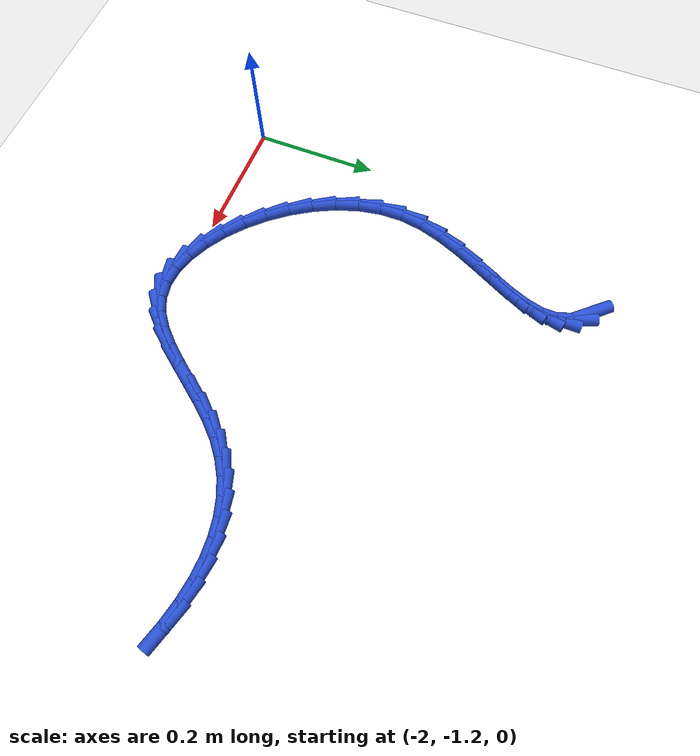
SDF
<sdf version="1.6">
 <world name="default">
  <model name="ground_plane">
   <static>1</static>
   <link name="link">
    <collision name="collision">
     <geometry><plane><normal>0 0 1</normal><size>100 100</size></plane></geometry>
     <surface><friction><ode><mu>100</mu><mu2>50</mu2></ode></friction></surface>
    </collision>
    <visual name="visual">
     <cast_shadows>0</cast_shadows>
     <geometry><plane><normal>0 0 1</normal><size>100 100</size></plane></geometry>
     <material>
      <script><uri>file://media/materials/scripts/gazebo.material</uri><name>Gazebo/WhiteGlow</name></script>
     </material>
    </visual>
   </link>
  </model>
  <model name="line">
   <link name="link_147">
    <pose>-1.8571635827525932 -0.5869967777899616 0.01 0 1.57 -0.8483136154068502</pose>
    <collision name="collision">
     <geometry><cylinder><radius>0.01</radius><length>0.08</length></cylinder></geometry>
    </collision>
    <visual name="visual">
     <material>
      <script><name>Gazebo/Blue</name><uri>file://media/materials/scripts/gazebo.material</uri></script>
     </material>
     <geometry><cylinder><radius>0.01</radius><length>0.08</length></cylinder></geometry>
    </visual>
   </link>
   <link name="link_148">
    <pose>-1.8396048983561772 -0.606916552551228 0.01 0 1.57 -1.229301847339331</pose>
    <collision name="collision">
     <geometry><cylinder><radius>0.01</radius><length>0.08</length></cylinder></geometry>
    </collision>
    <visual name="visual">
     <material>
      <script><name>Gazebo/Blue</name><uri>file://media/materials/scripts/gazebo.material</uri></script>
     </material>
     <geometry><cylinder><radius>0.01</radius><length>0.08</length></cylinder></geometry>
    </visual>
   </link>
   <link name="link_149">
    <pose>-1.8316050894118576 -0.6294246437668927 0.01 0 1.57 1.564953882779649</pose>
    <collision name="collision">
     <geometry><cylinder><radius>0.01</radius><length>0.08</length></cylinder></geometry>
    </collision>
    <visual name="visual">
     <material>
      <script><name>Gazebo/Blue</name><uri>file://media/materials/scripts/gazebo.material</uri></script>
     </material>
     <geometry><cylinder><radius>0.01</radius><length>0.08</length></cylinder></geometry>
    </visual>
   </link>
   <link name="link_150">
    <pose>-1.8317507326457945 -0.6543528375873002 0.01 0 1.57 1.3309283282918298</pose>
    <collision name="collision">
     <geometry><cylinder><radius>0.01</radius><length>0.08</length></cylinder></geometry>
    </collision>
    <visual name="visual">
     <material>
      <script><name>Gazebo/Blue</name><uri>file://media/materials/scripts/gazebo.material</uri></script>
     </material>
     <geometry><cylinder><radius>0.01</radius><length>0.08</length></cylinder></geometry>
    </visual>
   </link>
   <link name="link_151">
    <pose>-1.8383879100776281 -0.6814902333416779 0.01 0 1.57 1.1956118234558837</pose>
    <collision name="collision">
     <geometry><cylinder><radius>0.01</radius><length>0.08</length></cylinder></geometry>
    </collision>
    <visual name="visual">
     <material>
      <script><name>Gazebo/Blue</name><uri>file://media/materials/scripts/gazebo.material</uri></script>
     </material>
     <geometry><cylinder><radius>0.01</radius><length>0.08</length></cylinder></geometry>
    </visual>
   </link>
   <link name="link_152">
    <pose>-1.849862703726998 -0.7106259303592527 0.01 0 1.57 1.1281393002497861</pose>
    <collision name="collision">
     <geometry><cylinder><radius>0.01</radius><length>0.08</length></cylinder></geometry>
    </collision>
    <visual name="visual">
     <material>
      <script><name>Gazebo/Blue</name><uri>file://media/materials/scripts/gazebo.material</uri></script>
     </material>
     <geometry><cylinder><radius>0.01</radius><length>0.08</length></cylinder></geometry>
    </visual>
   </link>
   <link name="link_153">
    <pose>-1.864521195613543 -0.7415490279692516 0.01 0 1.57 1.1086643846197186</pose>
    <collision name="collision">
     <geometry><cylinder><radius>0.01</radius><length>0.08</length></cylinder></geometry>
    </collision>
    <visual name="visual">
     <material>
      <script><name>Gazebo/Blue</name><uri>file://media/materials/scripts/gazebo.material</uri></script>
     </material>
     <geometry><cylinder><radius>0.01</radius><length>0.08</length></cylinder></geometry>
    </visual>
   </link>
   <link name="link_154">
    <pose>-1.8807094677569032 -0.7740486255009017 0.01 0 1.57 1.1278741670774544</pose>
    <collision name="collision">
     <geometry><cylinder><radius>0.01</radius><length>0.08</length></cylinder></geometry>
    </collision>
    <visual name="visual">
     <material>
      <script><name>Gazebo/Blue</name><uri>file://media/materials/scripts/gazebo.material</uri></script>
     </material>
     <geometry><cylinder><radius>0.01</radius><length>0.08</length></cylinder></geometry>
    </visual>
   </link>
   <link name="link_155">
    <pose>-1.8967736021767183 -0.8079138222834302 0.01 0 1.57 1.1834623850517578</pose>
    <collision name="collision">
     <geometry><cylinder><radius>0.01</radius><length>0.08</length></cylinder></geometry>
    </collision>
    <visual name="visual">
     <material>
      <script><name>Gazebo/Blue</name><uri>file://media/materials/scripts/gazebo.material</uri></script>
     </material>
     <geometry><cylinder><radius>0.01</radius><length>0.08</length></cylinder></geometry>
    </visual>
   </link>
   <link name="link_156">
    <pose>-1.9110596808926272 -0.8429337176460641 0.01 0 1.57 1.2776822881761742</pose>
    <collision name="collision">
     <geometry><cylinder><radius>0.01</radius><length>0.08</length></cylinder></geometry>
    </collision>
    <visual name="visual">
     <material>
      <script><name>Gazebo/Blue</name><uri>file://media/materials/scripts/gazebo.material</uri></script>
     </material>
     <geometry><cylinder><radius>0.01</radius><length>0.08</length></cylinder></geometry>
    </visual>
   </link>
   <link name="link_157">
    <pose>-1.9219137859242699 -0.8788974109180303 0.01 0 1.57 1.414885408438813</pose>
    <collision name="collision">
     <geometry><cylinder><radius>0.01</radius><length>0.08</length></cylinder></geometry>
    </collision>
    <visual name="visual">
     <material>
      <script><name>Gazebo/Blue</name><uri>file://media/materials/scripts/gazebo.material</uri></script>
     </material>
     <geometry><cylinder><radius>0.01</radius><length>0.08</length></cylinder></geometry>
    </visual>
   </link>
   <link name="link_158">
    <pose>-1.927681999291286 -0.9155940014285561 0.01 0 1.57 -1.5542924822584658</pose>
    <collision name="collision">
     <geometry><cylinder><radius>0.01</radius><length>0.08</length></cylinder></geometry>
    </collision>
    <visual name="visual">
     <material>
      <script><name>Gazebo/Blue</name><uri>file://media/materials/scripts/gazebo.material</uri></script>
     </material>
     <geometry><cylinder><radius>0.01</radius><length>0.08</length></cylinder></geometry>
    </visual>
   </link>
   <link name="link_159">
    <pose>-1.92706872552102 -0.9527500766308098 0.01 0 1.57 -1.3914892937701793</pose>
    <collision name="collision">
     <geometry><cylinder><radius>0.01</radius><length>0.08</length></cylinder></geometry>
    </collision>
    <visual name="visual">
     <material>
      <script><name>Gazebo/Blue</name><uri>file://media/materials/scripts/gazebo.material</uri></script>
     </material>
     <geometry><cylinder><radius>0.01</radius><length>0.08</length></cylinder></geometry>
    </visual>
   </link>
   <link name="link_160">
    <pose>-1.9203500200660817 -0.9898180384447187 0.01 0 1.57 -1.24908857601859</pose>
    <collision name="collision">
     <geometry><cylinder><radius>0.01</radius><length>0.08</length></cylinder></geometry>
    </collision>
    <visual name="visual">
     <material>
      <script><name>Gazebo/Blue</name><uri>file://media/materials/scripts/gazebo.material</uri></script>
     </material>
     <geometry><cylinder><radius>0.01</radius><length>0.08</length></cylinder></geometry>
    </visual>
   </link>
   <link name="link_161">
    <pose>-1.9082327164751347 -1.0261751365282938 0.01 0 1.57 -1.1233277437378097</pose>
    <collision name="collision">
     <geometry><cylinder><radius>0.01</radius><length>0.08</length></cylinder></geometry>
    </collision>
    <visual name="visual">
     <material>
      <script><name>Gazebo/Blue</name><uri>file://media/materials/scripts/gazebo.material</uri></script>
     </material>
     <geometry><cylinder><radius>0.01</radius><length>0.08</length></cylinder></geometry>
    </visual>
   </link>
   <link name="link_162">
    <pose>-1.8914236596827907 -1.0611986185531883 0.01 0 1.57 -1.0094395321073677</pose>
    <collision name="collision">
     <geometry><cylinder><radius>0.01</radius><length>0.08</length></cylinder></geometry>
    </collision>
    <visual name="visual">
     <material>
      <script><name>Gazebo/Blue</name><uri>file://media/materials/scripts/gazebo.material</uri></script>
     </material>
     <geometry><cylinder><radius>0.01</radius><length>0.08</length></cylinder></geometry>
    </visual>
   </link>
   <link name="link_163">
    <pose>-1.8706296946236578 -1.0942657321910567 0.01 0 1.57 -0.9024551767164225</pose>
    <collision name="collision">
     <geometry><cylinder><radius>0.01</radius><length>0.08</length></cylinder></geometry>
    </collision>
    <visual name="visual">
     <material>
      <script><name>Gazebo/Blue</name><uri>file://media/materials/scripts/gazebo.material</uri></script>
     </material>
     <geometry><cylinder><radius>0.01</radius><length>0.08</length></cylinder></geometry>
    </visual>
   </link>
   <link name="link_164">
    <pose>-1.8465576662323449 -1.1247537251135509 0.01 0 1.57 -0.797318248520814</pose>
    <collision name="collision">
     <geometry><cylinder><radius>0.01</radius><length>0.08</length></cylinder></geometry>
    </collision>
    <visual name="visual">
     <material>
      <script><name>Gazebo/Blue</name><uri>file://media/materials/scripts/gazebo.material</uri></script>
     </material>
     <geometry><cylinder><radius>0.01</radius><length>0.08</length></cylinder></geometry>
    </visual>
   </link>
   <link name="link_165">
    <pose>-1.8199144194434624 -1.1520398449923253 0.01 0 1.57 -0.6886030501679339</pose>
    <collision name="collision">
     <geometry><cylinder><radius>0.01</radius><length>0.08</length></cylinder></geometry>
    </collision>
    <visual name="visual">
     <material>
      <script><name>Gazebo/Blue</name><uri>file://media/materials/scripts/gazebo.material</uri></script>
     </material>
     <geometry><cylinder><radius>0.01</radius><length>0.08</length></cylinder></geometry>
    </visual>
   </link>
   <link name="link_166">
    <pose>-1.7914067991916203 -1.1755013394990332 0.01 0 1.57 -0.5699925776739081</pose>
    <collision name="collision">
     <geometry><cylinder><radius>0.01</radius><length>0.08</length></cylinder></geometry>
    </collision>
    <visual name="visual">
     <material>
      <script><name>Gazebo/Blue</name><uri>file://media/materials/scripts/gazebo.material</uri></script>
     </material>
     <geometry><cylinder><radius>0.01</radius><length>0.08</length></cylinder></geometry>
    </visual>
   </link>
   <link name="link_167">
    <pose>-1.7617416504114265 -1.1945154563053273 0.01 0 1.57 -0.4336217282501226</pose>
    <collision name="collision">
     <geometry><cylinder><radius>0.01</radius><length>0.08</length></cylinder></geometry>
    </collision>
    <visual name="visual">
     <material>
      <script><name>Gazebo/Blue</name><uri>file://media/materials/scripts/gazebo.material</uri></script>
     </material>
     <geometry><cylinder><radius>0.01</radius><length>0.08</length></cylinder></geometry>
    </visual>
   </link>
   <link name="link_168">
    <pose>-1.7316258180374915 -1.208459443082862 0.01 0 1.57 -0.26960170551229506</pose>
    <collision name="collision">
     <geometry><cylinder><radius>0.01</radius><length>0.08</length></cylinder></geometry>
    </collision>
    <visual name="visual">
     <material>
      <script><name>Gazebo/Blue</name><uri>file://media/materials/scripts/gazebo.material</uri></script>
     </material>
     <geometry><cylinder><radius>0.01</radius><length>0.08</length></cylinder></geometry>
    </visual>
   </link>
   <link name="link_169">
    <pose>-1.7017661470044247 -1.2167105475032898 0.01 0 1.57 -0.06687910954912081</pose>
    <collision name="collision">
     <geometry><cylinder><radius>0.01</radius><length>0.08</length></cylinder></geometry>
    </collision>
    <visual name="visual">
     <material>
      <script><name>Gazebo/Blue</name><uri>file://media/materials/scripts/gazebo.material</uri></script>
     </material>
     <geometry><cylinder><radius>0.01</radius><length>0.08</length></cylinder></geometry>
    </visual>
   </link>
   <link name="link_170">
    <pose>-1.6728694822468353 -1.2186460172382643 0.01 0 1.57 0.18171734007144813</pose>
    <collision name="collision">
     <geometry><cylinder><radius>0.01</radius><length>0.08</length></cylinder></geometry>
    </collision>
    <visual name="visual">
     <material>
      <script><name>Gazebo/Blue</name><uri>file://media/materials/scripts/gazebo.material</uri></script>
     </material>
     <geometry><cylinder><radius>0.01</radius><length>0.08</length></cylinder></geometry>
    </visual>
   </link>
   <link name="link_171">
    <pose>-1.6456425933817154 -1.213643231831206 0.01 0 1.57 0.4504855506813349</pose>
    <collision name="collision">
     <geometry><cylinder><radius>0.01</radius><length>0.08</length></cylinder></geometry>
    </collision>
    <visual name="visual">
     <material>
      <script><name>Gazebo/Blue</name><uri>file://media/materials/scripts/gazebo.material</uri></script>
     </material>
     <geometry><cylinder><radius>0.01</radius><length>0.08</length></cylinder></geometry>
    </visual>
   </link>
   <link name="link_172">
    <pose>-1.6205484888016914 -1.2015063663618777 0.01 0 1.57 0.6605635682699875</pose>
    <collision name="collision">
     <geometry><cylinder><radius>0.01</radius><length>0.08</length></cylinder></geometry>
    </collision>
    <visual name="visual">
     <material>
      <script><name>Gazebo/Blue</name><uri>file://media/materials/scripts/gazebo.material</uri></script>
     </material>
     <geometry><cylinder><radius>0.01</radius><length>0.08</length></cylinder></geometry>
    </visual>
   </link>
   <link name="link_173">
    <pose>-1.5972647790083725 -1.1834147297731739 0.01 0 1.57 0.7996997184686754</pose>
    <collision name="collision">
     <geometry><cylinder><radius>0.01</radius><length>0.08</length></cylinder></geometry>
    </collision>
    <visual name="visual">
     <material>
      <script><name>Gazebo/Blue</name><uri>file://media/materials/scripts/gazebo.material</uri></script>
     </material>
     <geometry><cylinder><radius>0.01</radius><length>0.08</length></cylinder></geometry>
    </visual>
   </link>
   <link name="link_174">
    <pose>-1.5753111979720715 -1.1608240531461977 0.01 0 1.57 0.8820259078560727</pose>
    <collision name="collision">
     <geometry><cylinder><radius>0.01</radius><length>0.08</length></cylinder></geometry>
    </collision>
    <visual name="visual">
     <material>
      <script><name>Gazebo/Blue</name><uri>file://media/materials/scripts/gazebo.material</uri></script>
     </material>
     <geometry><cylinder><radius>0.01</radius><length>0.08</length></cylinder></geometry>
    </visual>
   </link>
   <link name="link_175">
    <pose>-1.5542074796631002 -1.1351900675620508 0.01 0 1.57 0.919861803378261</pose>
    <collision name="collision">
     <geometry><cylinder><radius>0.01</radius><length>0.08</length></cylinder></geometry>
    </collision>
    <visual name="visual">
     <material>
      <script><name>Gazebo/Blue</name><uri>file://media/materials/scripts/gazebo.material</uri></script>
     </material>
     <geometry><cylinder><radius>0.01</radius><length>0.08</length></cylinder></geometry>
    </visual>
   </link>
   <link name="link_176">
    <pose>-1.5334733580517705 -1.1079685041018357 0.01 0 1.57 0.9196248348902297</pose>
    <collision name="collision">
     <geometry><cylinder><radius>0.01</radius><length>0.08</length></cylinder></geometry>
    </collision>
    <visual name="visual">
     <material>
      <script><name>Gazebo/Blue</name><uri>file://media/materials/scripts/gazebo.material</uri></script>
     </material>
     <geometry><cylinder><radius>0.01</radius><length>0.08</length></cylinder></geometry>
    </visual>
   </link>
   <link name="link_177">
    <pose>-1.5126285671083959 -1.0806150938466546 0.01 0 1.57 0.8818800403342655</pose>
    <collision name="collision">
     <geometry><cylinder><radius>0.01</radius><length>0.08</length></cylinder></geometry>
    </collision>
    <visual name="visual">
     <material>
      <script><name>Gazebo/Blue</name><uri>file://media/materials/scripts/gazebo.material</uri></script>
     </material>
     <geometry><cylinder><radius>0.01</radius><length>0.08</length></cylinder></geometry>
    </visual>
   </link>
   <link name="link_178">
    <pose>-1.491192840803287 -1.0545855678776093 0.01 0 1.57 0.8017395108635217</pose>
    <collision name="collision">
     <geometry><cylinder><radius>0.01</radius><length>0.08</length></cylinder></geometry>
    </collision>
    <visual name="visual">
     <material>
      <script><name>Gazebo/Blue</name><uri>file://media/materials/scripts/gazebo.material</uri></script>
     </material>
     <geometry><cylinder><radius>0.01</radius><length>0.08</length></cylinder></geometry>
    </visual>
   </link>
   <link name="link_179">
    <pose>-1.4686871598578966 -1.0313320534526587 0.01 0 1.57 0.6848810068019472</pose>
    <collision name="collision">
     <geometry><cylinder><radius>0.01</radius><length>0.08</length></cylinder></geometry>
    </collision>
    <visual name="visual">
     <material>
      <script><name>Gazebo/Blue</name><uri>file://media/materials/scripts/gazebo.material</uri></script>
     </material>
     <geometry><cylinder><radius>0.01</radius><length>0.08</length></cylinder></geometry>
    </visual>
   </link>
   <link name="link_180">
    <pose>-1.4448001874749599 -1.0118219796505934 0.01 0 1.57 0.5583181128303198</pose>
    <collision name="collision">
     <geometry><cylinder><radius>0.01</radius><length>0.08</length></cylinder></geometry>
    </collision>
    <visual name="visual">
     <material>
      <script><name>Gazebo/Blue</name><uri>file://media/materials/scripts/gazebo.material</uri></script>
     </material>
     <geometry><cylinder><radius>0.01</radius><length>0.08</length></cylinder></geometry>
    </visual>
   </link>
   <link name="link_181">
    <pose>-1.4195557176557994 -0.9960540560595759 0.01 0 1.57 0.4291045963022248</pose>
    <collision name="collision">
     <geometry><cylinder><radius>0.01</radius><length>0.08</length></cylinder></geometry>
    </collision>
    <visual name="visual">
     <material>
      <script><name>Gazebo/Blue</name><uri>file://media/materials/scripts/gazebo.material</uri></script>
     </material>
     <geometry><cylinder><radius>0.01</radius><length>0.08</length></cylinder></geometry>
    </visual>
   </link>
   <link name="link_182">
    <pose>-1.3930174037056309 -0.983911776105219 0.01 0 1.57 0.30142375467756444</pose>
    <collision name="collision">
     <geometry><cylinder><radius>0.01</radius><length>0.08</length></cylinder></geometry>
    </collision>
    <visual name="visual">
     <material>
      <script><name>Gazebo/Blue</name><uri>file://media/materials/scripts/gazebo.material</uri></script>
     </material>
     <geometry><cylinder><radius>0.01</radius><length>0.08</length></cylinder></geometry>
    </visual>
   </link>
   <link name="link_183">
    <pose>-1.3652488989296718 -0.975278633213135 0.01 0 1.57 0.1791708021368795</pose>
    <collision name="collision">
     <geometry><cylinder><radius>0.01</radius><length>0.08</length></cylinder></geometry>
    </collision>
    <visual name="visual">
     <material>
      <script><name>Gazebo/Blue</name><uri>file://media/materials/scripts/gazebo.material</uri></script>
     </material>
     <geometry><cylinder><radius>0.01</radius><length>0.08</length></cylinder></geometry>
    </visual>
   </link>
   <link name="link_184">
    <pose>-1.3363138566331378 -0.9700381208089361 0.01 0 1.57 0.06530394992882621</pose>
    <collision name="collision">
     <geometry><cylinder><radius>0.01</radius><length>0.08</length></cylinder></geometry>
    </collision>
    <visual name="visual">
     <material>
      <script><name>Gazebo/Blue</name><uri>file://media/materials/scripts/gazebo.material</uri></script>
     </material>
     <geometry><cylinder><radius>0.01</radius><length>0.08</length></cylinder></geometry>
    </visual>
   </link>
   <link name="link_185">
    <pose>-1.306275930121247 -0.9680737323182358 0.01 0 1.57 -0.0384410979779327</pose>
    <collision name="collision">
     <geometry><cylinder><radius>0.01</radius><length>0.08</length></cylinder></geometry>
    </collision>
    <visual name="visual">
     <material>
      <script><name>Gazebo/Blue</name><uri>file://media/materials/scripts/gazebo.material</uri></script>
     </material>
     <geometry><cylinder><radius>0.01</radius><length>0.08</length></cylinder></geometry>
    </visual>
   </link>
   <link name="link_186">
    <pose>-1.275198772699214 -0.9692689611666457 0.01 0 1.57 -0.13146751296706333</pose>
    <collision name="collision">
     <geometry><cylinder><radius>0.01</radius><length>0.08</length></cylinder></geometry>
    </collision>
    <visual name="visual">
     <material>
      <script><name>Gazebo/Blue</name><uri>file://media/materials/scripts/gazebo.material</uri></script>
     </material>
     <geometry><cylinder><radius>0.01</radius><length>0.08</length></cylinder></geometry>
    </visual>
   </link>
   <link name="link_187">
    <pose>-1.2431460376722563 -0.9735073007797787 0.01 0 1.57 -0.2140234181851184</pose>
    <collision name="collision">
     <geometry><cylinder><radius>0.01</radius><length>0.08</length></cylinder></geometry>
    </collision>
    <visual name="visual">
     <material>
      <script><name>Gazebo/Blue</name><uri>file://media/materials/scripts/gazebo.material</uri></script>
     </material>
     <geometry><cylinder><radius>0.01</radius><length>0.08</length></cylinder></geometry>
    </visual>
   </link>
   <link name="link_188">
    <pose>-1.2101813783455908 -0.9806722445832473 0.01 0 1.57 -0.28686952476878386</pose>
    <collision name="collision">
     <geometry><cylinder><radius>0.01</radius><length>0.08</length></cylinder></geometry>
    </collision>
    <visual name="visual">
     <material>
      <script><name>Gazebo/Blue</name><uri>file://media/materials/scripts/gazebo.material</uri></script>
     </material>
     <geometry><cylinder><radius>0.01</radius><length>0.08</length></cylinder></geometry>
    </visual>
   </link>
  </model>
 </world>
</sdf>
